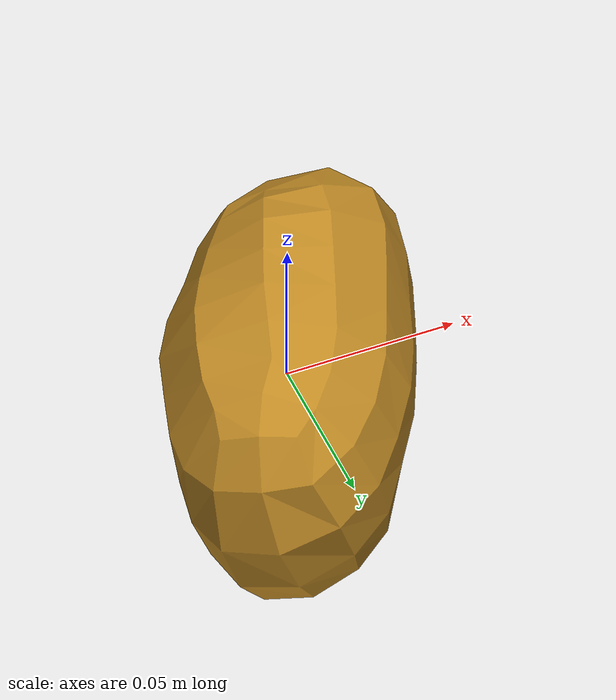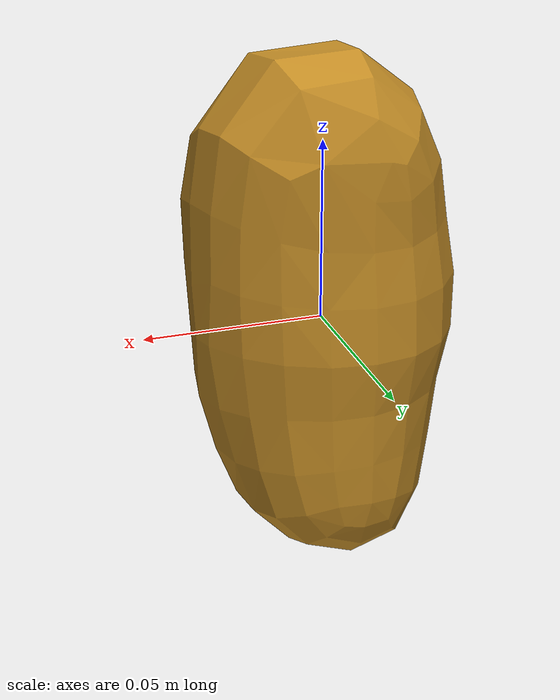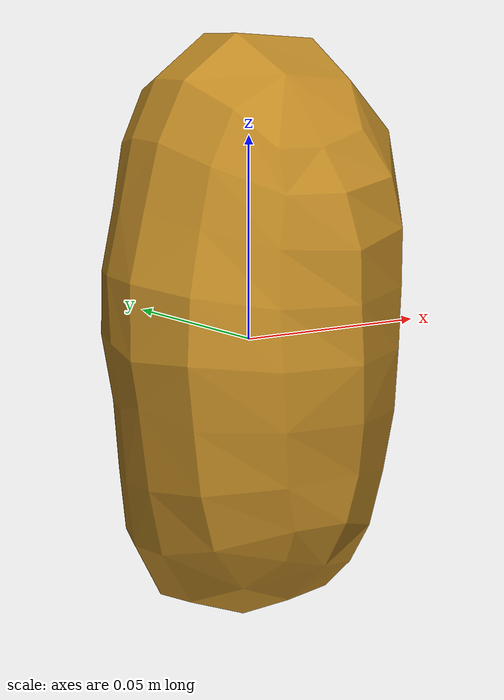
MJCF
<mujoco model="Potato_13">
  <compiler autolimits="true" boundmass="0.01" angle="radian"/>
  <default>
    <default class="/">
      <default class="__VISUAL_MJT__">
        <geom contype="0" conaffinity="0" group="0"/>
      </default>
      <default class="__STRUCTURAL_MJT__">
        <geom contype="8" conaffinity="15" group="4" friction="0.90000000000000002 0.90000000000000002 0.001" solref="0.025000000000000001 1" solimp="0.998 0.998 0.001"/>
      </default>
      <default class="__DYNAMIC_MJT__">
        <geom contype="1" conaffinity="15" group="4" friction="0.90000000000000002 0.90000000000000002 0.001" solref="0.025000000000000001 1" solimp="0.998 0.998 0.001"/>
      </default>
    </default>
  </default>
  <asset>
    <texture name="Potato2_Mat3" type="2d" file="Potato2_AlbedoTransparency.png"/>
    <material name="material_Potato2_Mat3" class="/" texture="Potato2_Mat3" specular="0.5" shininess="0.5" rgba="1 0.74807299999999999 0.20588239999999999 1"/>
    <mesh name="Potato_13_potato_b3" class="/" file="Potato_13_potato_b3/Potato_13_potato_b3.obj" scale="1 1 1"/>
  </asset>
  <worldbody>
    <body name="Potato_13">
      <joint name="Potato_13_free" class="/" type="free" pos="0 0 0" axis="0 0 1" stiffness="0" range="0 0" armature="0" damping="0.10000000000000001" frictionloss="0"/>
      <body name="Potato_13_potato_b3" pos="0.00063000000000000003 -0.0014289089965820313 -0.0014156134033203125" quat="0.99953353404998779 -0.030540324747562408 0 0">
        <geom name="Potato_13_potato_b3" class="__VISUAL_MJT__" type="mesh" material="material_Potato2_Mat3" shellinertia="true" mesh="Potato_13_potato_b3"/>
        <geom name="Potato_13_PrimitiveCollider_0" class="__DYNAMIC_MJT__" type="capsule" size="0.036287307739257812 0.038970440626144409" rgba="0 1 0 1" pos="0.00062704086303710938 0.0011770135024562478 0.0014941955450922251" quat="1.4751396609986736e-06 0.99999999999891198 0 0"/>
      </body>
    </body>
  </worldbody>
</mujoco>
